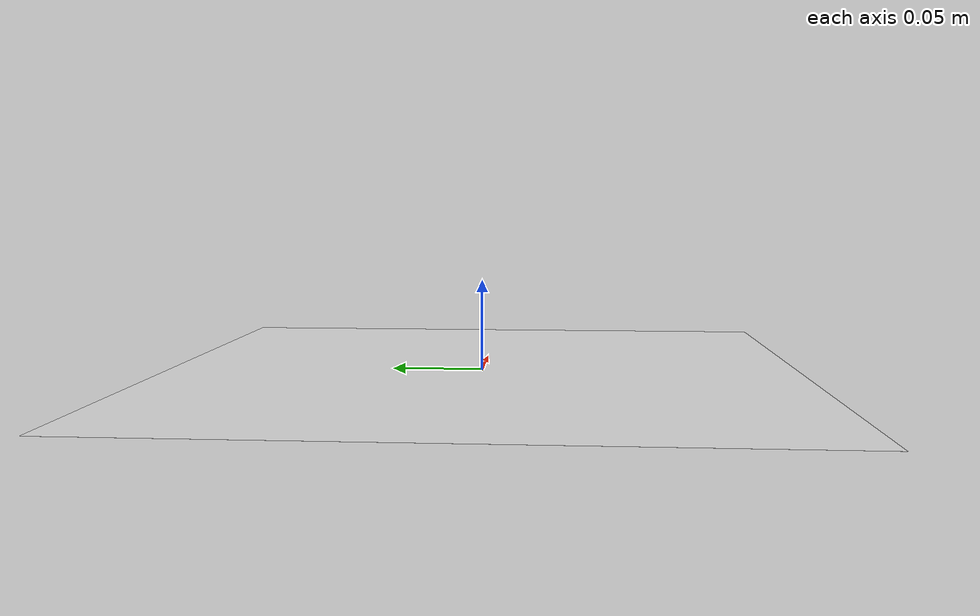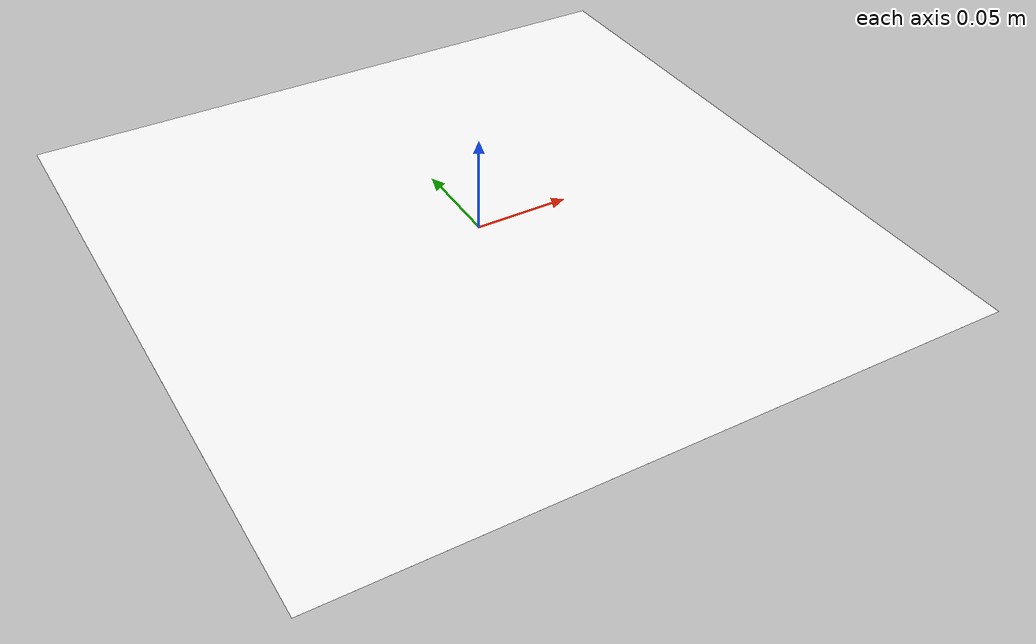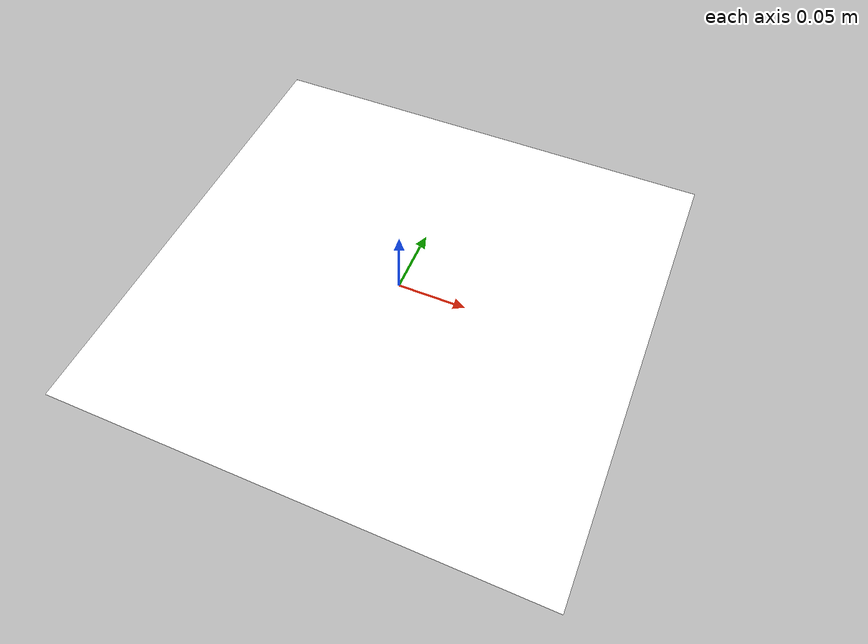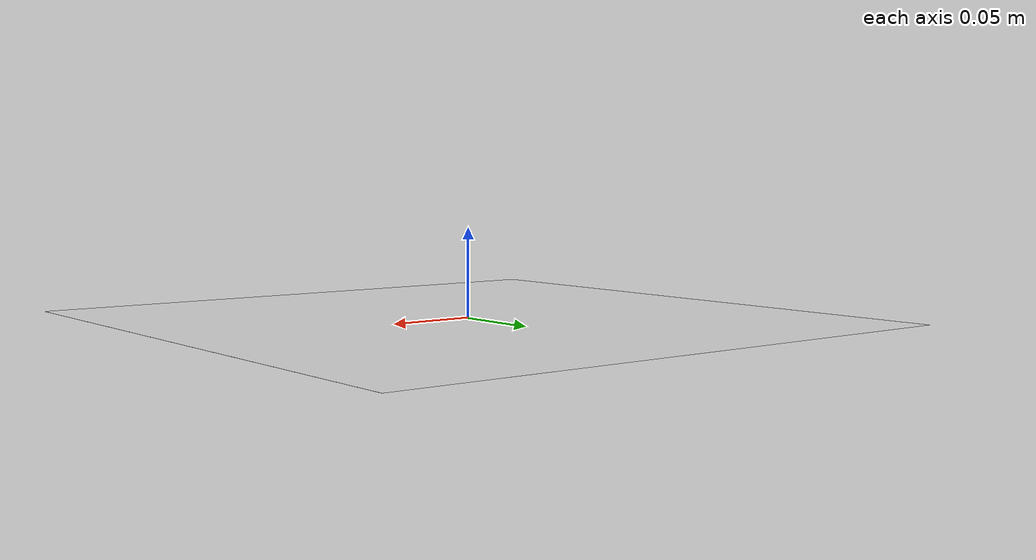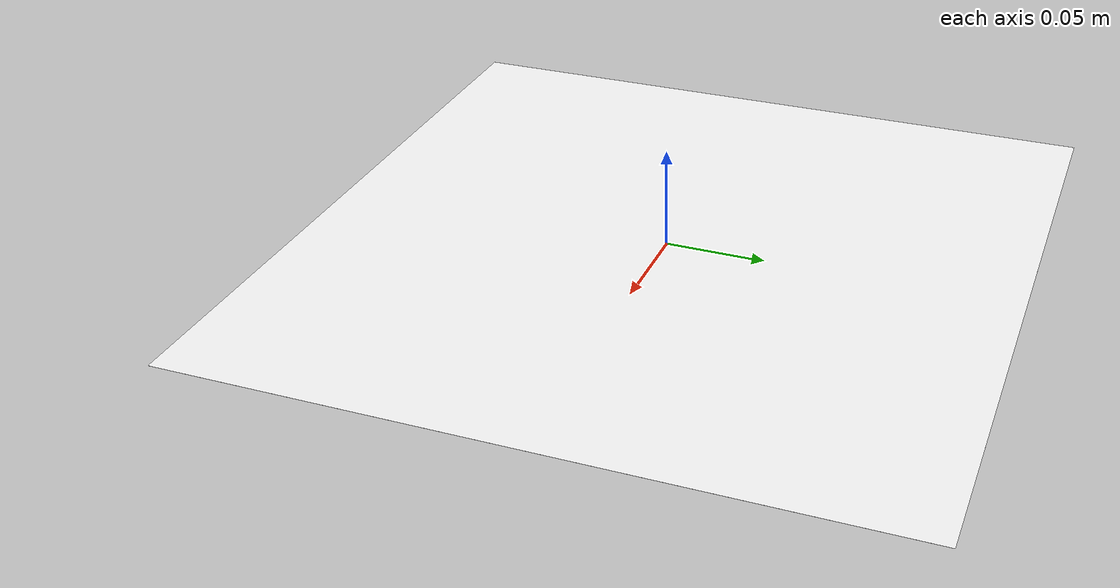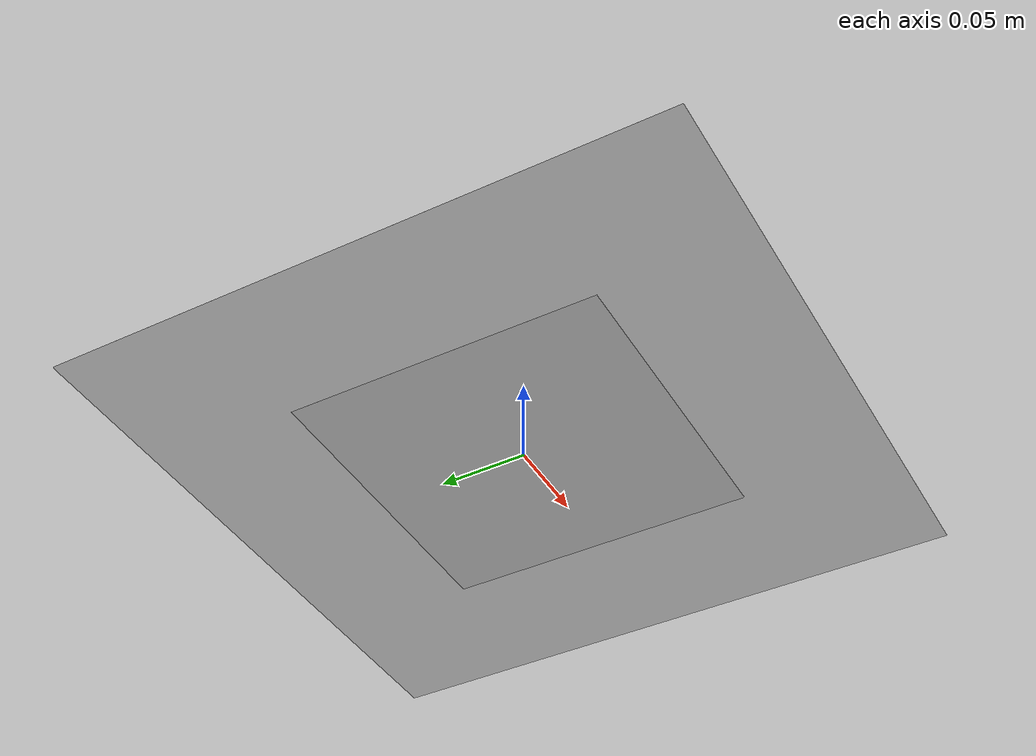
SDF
<?xml version='1.0'?>
<sdf version='1.5'>
  <model name='conejo_visual_marker1'>

    <link name='marker1'>
      <pose frame=''>0 0 0 0 0 0</pose>
      <visual name='visual'>
        <geometry>
          <box>
            <size>0.3500 0.3500 1e-5</size>
          </box>
        </geometry>
        <material>
          <script>
            <uri>model://conejo_visual_marker1/materials/scripts</uri>
            <uri>model://conejo_visual_marker1/materials/textures</uri>
            <name>ArucoVisualMarker7/Marker</name>
          </script>
          <ambient>1 1 1 1</ambient>
          <diffuse>1 1 1 1</diffuse>
          <specular>0 0 0 1</specular>
          <emissive>1 1 1 0</emissive>
          <shader type='vertex'>
            <normal_map>__default__</normal_map>
          </shader>
        </material>
        <pose frame=''>0 0 0 0 -0 0</pose>
        <cast_shadows>1</cast_shadows>
        <transparency>0</transparency>
      </visual>
      <collision name='collision'>
        <laser_retro>0</laser_retro>
        <max_contacts>10</max_contacts>
        <pose frame=''>0 0 0 0 -0 0</pose>
        <geometry>
          <box>
            <size>0.1778 0.1778 1e-05</size>
          </box>
        </geometry>
      </collision>
    </link>

    <link name='marker_pad1'>
      <pose frame='marker1'>0 0 -1e-5 0 -0 0</pose>
      <visual name='visual'>
        <geometry>
          <box>
            <size>0.1778 0.1778 1e-5</size>
          </box>
        </geometry>
        <material>
          <lighting>1</lighting>
          <script>
            <uri>file://media/materials/scripts/gazebo.material</uri>
            <name>Gazebo/White</name>
          </script>
          <ambient>0.3 0.3 0.3 1</ambient>
          <diffuse>0.7 0.7 0.7 1</diffuse>
          <specular>0.01 0.01 0.01 1</specular>
          <emissive>1 1 1 0</emissive>
          <shader type='vertex'>
            <normal_map>__default__</normal_map>
          </shader>
        </material>
        <cast_shadows>1</cast_shadows>
        <transparency>0</transparency>
      </visual>
      <collision name='collision'>
        <laser_retro>0</laser_retro>
        <max_contacts>10</max_contacts>
        <pose frame=''>0 0 0 0 -0 0</pose>
        <geometry>
          <box>
            <size>0.1778 0.1778 1e-5</size>
          </box>
        </geometry>
      </collision>
    </link>

    <joint name='marker_JOINT_marker_pad1' type='revolute'>
      <parent>marker1</parent>
      <child>marker_pad1</child>
      <pose frame=''>0 0 0 0 -0 0</pose>
      <axis>
        <xyz>0 0 1</xyz>
        <limit>
          <upper>0</upper>
          <lower>0</lower>
        </limit>
      </axis>
    </joint>

    <static>1</static>
    <allow_auto_disable>1</allow_auto_disable>

  </model>
</sdf>
